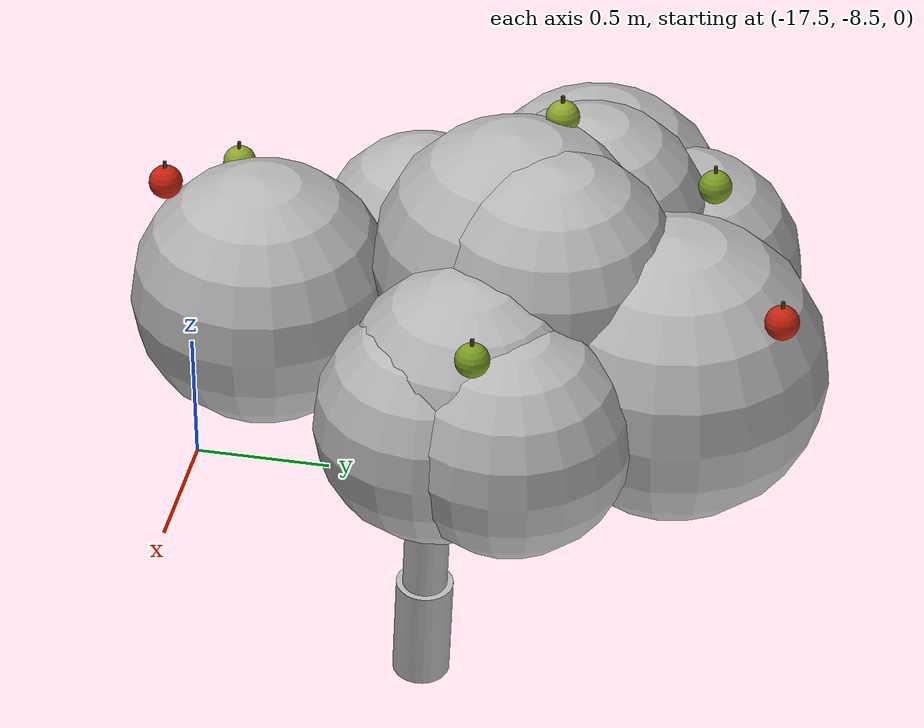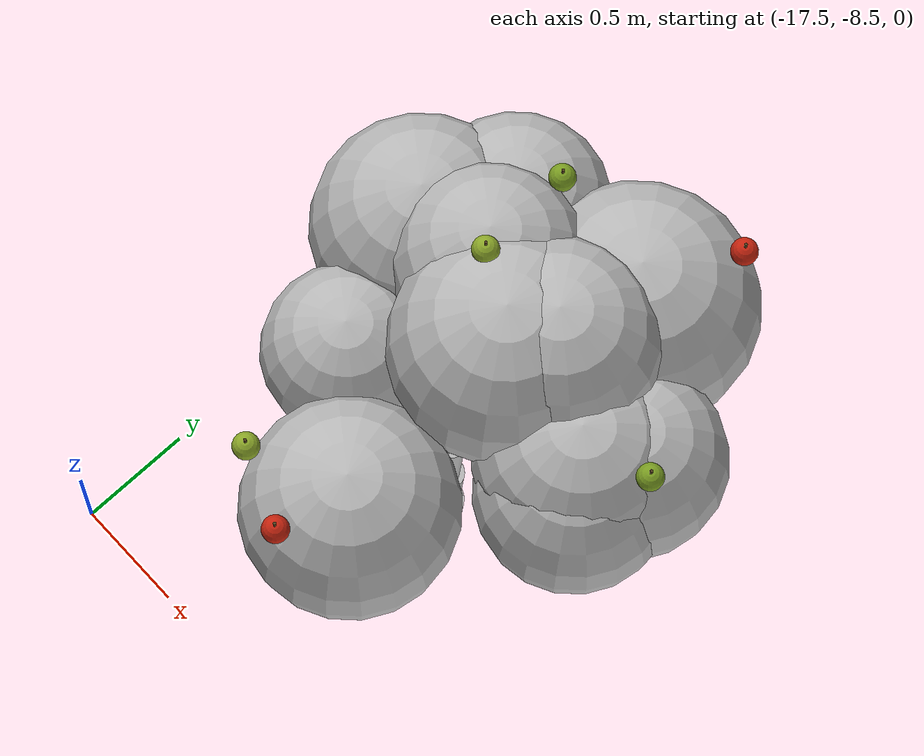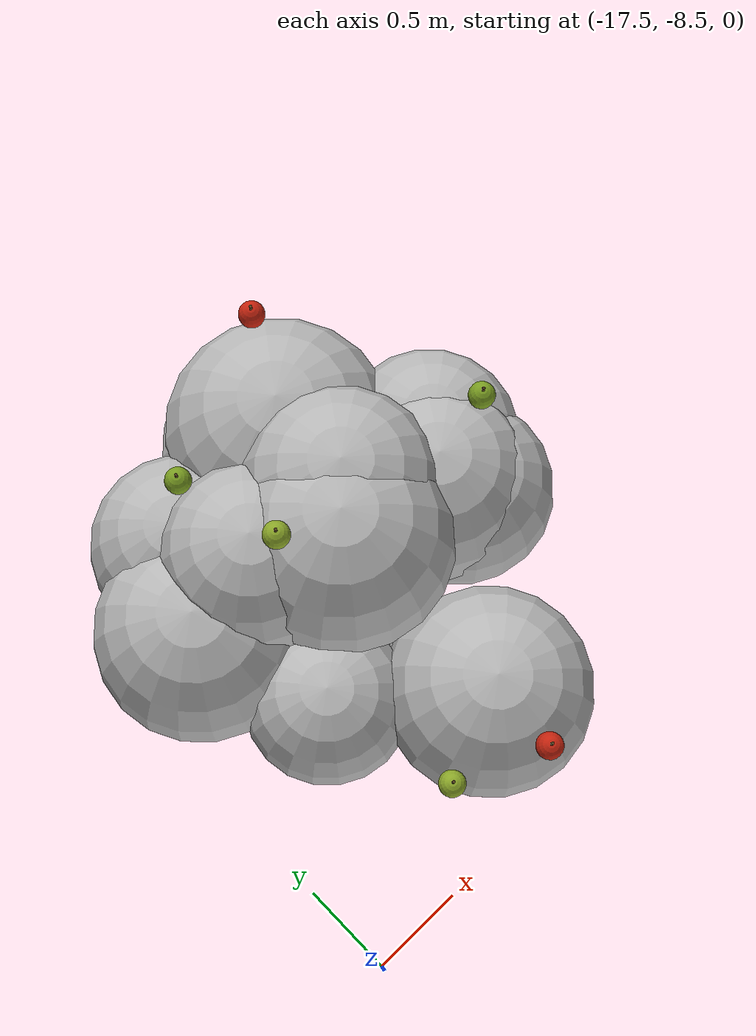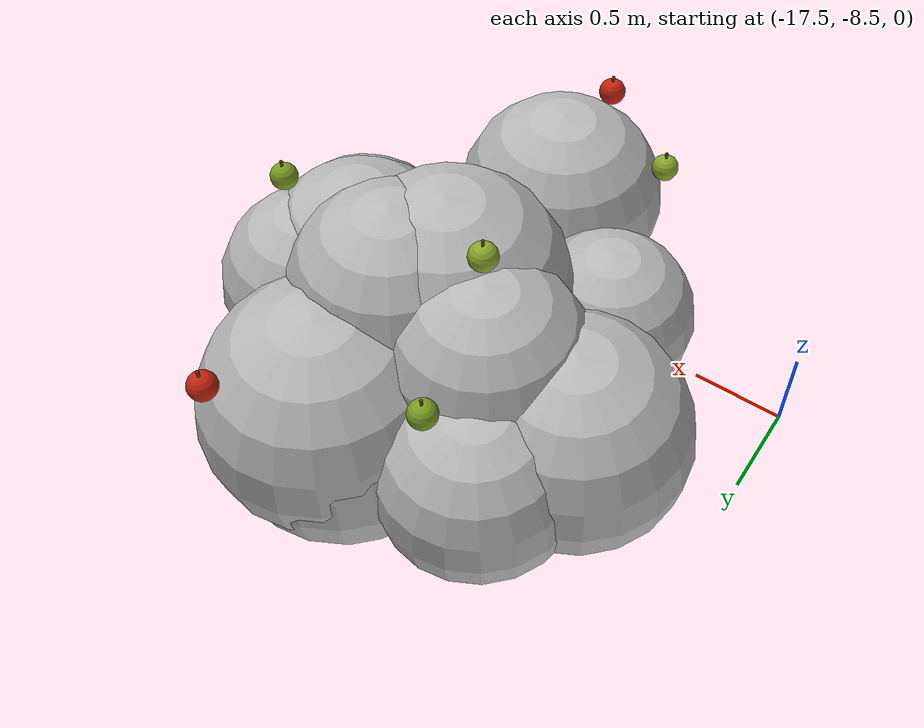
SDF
<sdf version="1.6">
 <world name="default">
  <model name="tree_r0_t0">
   <static>true</static>
   <link name="tree_r0_t0_trunk0">
    <pose>-16.4653 -7.4328 0.1814 -0.0507 0.0288 0</pose>
    <collision name="tree_r0_t0_trunk0_c">
     <geometry><cylinder><radius>0.0986</radius><length>0.3846</length></cylinder></geometry>
    </collision>
    <visual name="tree_r0_t0_trunk0_v">
     <geometry><cylinder><radius>0.0986</radius><length>0.3846</length></cylinder></geometry>
     <material>
      <script>
       <uri>model://orchard/materials/scripts</uri>
       <uri>model://orchard/materials/textures</uri>
       <name>Orchard/Bark</name>
      </script>
     </material>
    </visual>
   </link>
   <link name="tree_r0_t0_trunk1">
    <pose>-16.4548 -7.4144 0.5443 -0.0507 0.0288 0</pose>
    <visual name="tree_r0_t0_trunk1_v">
     <geometry><cylinder><radius>0.0769</radius><length>0.3846</length></cylinder></geometry>
     <material>
      <script>
       <uri>model://orchard/materials/scripts</uri>
       <uri>model://orchard/materials/textures</uri>
       <name>Orchard/Bark</name>
      </script>
     </material>
    </visual>
   </link>
   <link name="tree_r0_t0_trunk2">
    <pose>-16.4444 -7.3960 0.9071 -0.0507 0.0288 0</pose>
    <visual name="tree_r0_t0_trunk2_v">
     <geometry><cylinder><radius>0.0552</radius><length>0.3846</length></cylinder></geometry>
     <material>
      <script>
       <uri>model://orchard/materials/scripts</uri>
       <uri>model://orchard/materials/textures</uri>
       <name>Orchard/Bark</name>
      </script>
     </material>
    </visual>
   </link>
   <link name="tree_r0_t0_br0">
    <pose>-16.2346 -7.3371 1.3193 0.0000 0.7395 0.2382</pose>
    <visual name="tree_r0_t0_br0_v">
     <geometry><cylinder><radius>0.0227</radius><length>0.6247</length></cylinder></geometry>
     <material>
      <script>
       <uri>model://orchard/materials/scripts</uri>
       <uri>model://orchard/materials/textures</uri>
       <name>Orchard/Bark</name>
      </script>
     </material>
    </visual>
   </link>
   <link name="tree_r0_t0_br1">
    <pose>-16.2652 -7.1058 1.3231 0.0000 0.9537 1.0164</pose>
    <visual name="tree_r0_t0_br1_v">
     <geometry><cylinder><radius>0.0273</radius><length>0.8105</length></cylinder></geometry>
     <material>
      <script>
       <uri>model://orchard/materials/scripts</uri>
       <uri>model://orchard/materials/textures</uri>
       <name>Orchard/Bark</name>
      </script>
     </material>
    </visual>
   </link>
   <link name="tree_r0_t0_br2">
    <pose>-16.6410 -7.1288 1.2903 0.0000 1.0187 2.2347</pose>
    <visual name="tree_r0_t0_br2_v">
     <geometry><cylinder><radius>0.0277</radius><length>0.7694</length></cylinder></geometry>
     <material>
      <script>
       <uri>model://orchard/materials/scripts</uri>
       <uri>model://orchard/materials/textures</uri>
       <name>Orchard/Bark</name>
      </script>
     </material>
    </visual>
   </link>
   <link name="tree_r0_t0_br3">
    <pose>-16.6344 -7.4707 1.3455 0.0000 0.6910 3.5474</pose>
    <visual name="tree_r0_t0_br3_v">
     <geometry><cylinder><radius>0.0327</radius><length>0.6668</length></cylinder></geometry>
     <material>
      <script>
       <uri>model://orchard/materials/scripts</uri>
       <uri>model://orchard/materials/textures</uri>
       <name>Orchard/Bark</name>
      </script>
     </material>
    </visual>
   </link>
   <link name="tree_r0_t0_br4">
    <pose>-16.4355 -7.6374 1.3209 0.0000 0.8233 4.7269</pose>
    <visual name="tree_r0_t0_br4_v">
     <geometry><cylinder><radius>0.0239</radius><length>0.6835</length></cylinder></geometry>
     <material>
      <script>
       <uri>model://orchard/materials/scripts</uri>
       <uri>model://orchard/materials/textures</uri>
       <name>Orchard/Bark</name>
      </script>
     </material>
    </visual>
   </link>
   <link name="tree_r0_t0_fol0">
    <pose>-15.8335 -7.0119 1.5308 0 0 0</pose>
    <visual name="tree_r0_t0_fol0_v">
     <geometry><sphere><radius>0.3902</radius></sphere></geometry>
     <material>
      <script>
       <uri>model://orchard/materials/scripts</uri>
       <uri>model://orchard/materials/textures</uri>
       <name>Orchard/Foliage1</name>
      </script>
     </material>
    </visual>
   </link>
   <link name="tree_r0_t0_fol1">
    <pose>-16.2694 -6.5624 1.5442 0 0 0</pose>
    <visual name="tree_r0_t0_fol1_v">
     <geometry><sphere><radius>0.4944</radius></sphere></geometry>
     <material>
      <script>
       <uri>model://orchard/materials/scripts</uri>
       <uri>model://orchard/materials/textures</uri>
       <name>Orchard/Foliage3</name>
      </script>
     </material>
    </visual>
   </link>
   <link name="tree_r0_t0_fol2">
    <pose>-16.8904 -6.6268 1.5082 0 0 0</pose>
    <visual name="tree_r0_t0_fol2_v">
     <geometry><sphere><radius>0.3931</radius></sphere></geometry>
     <material>
      <script>
       <uri>model://orchard/materials/scripts</uri>
       <uri>model://orchard/materials/textures</uri>
       <name>Orchard/Foliage0</name>
      </script>
     </material>
    </visual>
   </link>
   <link name="tree_r0_t0_fol3">
    <pose>-17.0858 -6.9519 1.5268 0 0 0</pose>
    <visual name="tree_r0_t0_fol3_v">
     <geometry><sphere><radius>0.4514</radius></sphere></geometry>
     <material>
      <script>
       <uri>model://orchard/materials/scripts</uri>
       <uri>model://orchard/materials/textures</uri>
       <name>Orchard/Foliage1</name>
      </script>
     </material>
    </visual>
   </link>
   <link name="tree_r0_t0_fol4">
    <pose>-16.3393 -6.5587 1.4676 0 0 0</pose>
    <visual name="tree_r0_t0_fol4_v">
     <geometry><sphere><radius>0.4600</radius></sphere></geometry>
     <material>
      <script>
       <uri>model://orchard/materials/scripts</uri>
       <uri>model://orchard/materials/textures</uri>
       <name>Orchard/Foliage3</name>
      </script>
     </material>
    </visual>
   </link>
   <link name="tree_r0_t0_fol5">
    <pose>-16.9046 -7.5106 1.5064 0 0 0</pose>
    <visual name="tree_r0_t0_fol5_v">
     <geometry><sphere><radius>0.3475</radius></sphere></geometry>
     <material>
      <script>
       <uri>model://orchard/materials/scripts</uri>
       <uri>model://orchard/materials/textures</uri>
       <name>Orchard/Foliage1</name>
      </script>
     </material>
    </visual>
   </link>
   <link name="tree_r0_t0_fol6">
    <pose>-16.3045 -6.9669 1.8181 0 0 0</pose>
    <visual name="tree_r0_t0_fol6_v">
     <geometry><sphere><radius>0.4140</radius></sphere></geometry>
     <material>
      <script>
       <uri>model://orchard/materials/scripts</uri>
       <uri>model://orchard/materials/textures</uri>
       <name>Orchard/Foliage2</name>
      </script>
     </material>
    </visual>
   </link>
   <link name="tree_r0_t0_fol7">
    <pose>-16.4407 -7.1085 1.7764 0 0 0</pose>
    <visual name="tree_r0_t0_fol7_v">
     <geometry><sphere><radius>0.4650</radius></sphere></geometry>
     <material>
      <script>
       <uri>model://orchard/materials/scripts</uri>
       <uri>model://orchard/materials/textures</uri>
       <name>Orchard/Foliage2</name>
      </script>
     </material>
    </visual>
   </link>
   <link name="tree_r0_t0_fol8">
    <pose>-15.8855 -7.2571 1.5172 0 0 0</pose>
    <visual name="tree_r0_t0_fol8_v">
     <geometry><sphere><radius>0.3945</radius></sphere></geometry>
     <material>
      <script>
       <uri>model://orchard/materials/scripts</uri>
       <uri>model://orchard/materials/textures</uri>
       <name>Orchard/Foliage2</name>
      </script>
     </material>
    </visual>
   </link>
   <link name="tree_r0_t0_fol9">
    <pose>-16.7368 -6.9176 1.7532 0 0 0</pose>
    <visual name="tree_r0_t0_fol9_v">
     <geometry><sphere><radius>0.3900</radius></sphere></geometry>
     <material>
      <script>
       <uri>model://orchard/materials/scripts</uri>
       <uri>model://orchard/materials/textures</uri>
       <name>Orchard/Foliage2</name>
      </script>
     </material>
    </visual>
   </link>
   <link name="tree_r0_t0_fol10">
    <pose>-15.9590 -7.1636 1.5862 0 0 0</pose>
    <visual name="tree_r0_t0_fol10_v">
     <geometry><sphere><radius>0.4174</radius></sphere></geometry>
     <material>
      <script>
       <uri>model://orchard/materials/scripts</uri>
       <uri>model://orchard/materials/textures</uri>
       <name>Orchard/Foliage0</name>
      </script>
     </material>
    </visual>
   </link>
   <link name="tree_r0_t0_fol11">
    <pose>-16.4131 -7.9407 1.5576 0 0 0</pose>
    <visual name="tree_r0_t0_fol11_v">
     <geometry><sphere><radius>0.4350</radius></sphere></geometry>
     <material>
      <script>
       <uri>model://orchard/materials/scripts</uri>
       <uri>model://orchard/materials/textures</uri>
       <name>Orchard/Foliage2</name>
      </script>
     </material>
    </visual>
   </link>
   <link name="tree_r0_t0_ap0">
    <pose>-15.6552 -7.1002 1.9350 0 0 0</pose>
    <visual name="tree_r0_t0_ap0_v">
     <geometry><sphere><radius>0.0550</radius></sphere></geometry>
     <material>
      <ambient>0.192 0.248 0.052 1.00</ambient>
      <diffuse>0.480 0.620 0.130 1.00</diffuse>
      <specular>0.45 0.35 0.32 1</specular>
     </material>
    </visual>
   </link>
   <link name="tree_r0_t0_st0">
    <pose>-15.6552 -7.1002 1.9872 0 0 0</pose>
    <visual name="tree_r0_t0_st0_v">
     <geometry><cylinder><radius>0.0060</radius><length>0.0500</length></cylinder></geometry>
     <material><ambient>0.128 0.096 0.040 1.00</ambient><diffuse>0.320 0.240 0.100 1.00</diffuse></material>
    </visual>
   </link>
   <link name="tree_r0_t0_ap1">
    <pose>-16.8080 -8.1088 1.7825 0 0 0</pose>
    <visual name="tree_r0_t0_ap1_v">
     <geometry><sphere><radius>0.0550</radius></sphere></geometry>
     <material>
      <ambient>0.220 0.264 0.064 1.00</ambient>
      <diffuse>0.550 0.660 0.160 1.00</diffuse>
      <specular>0.45 0.35 0.32 1</specular>
     </material>
    </visual>
   </link>
   <link name="tree_r0_t0_st1">
    <pose>-16.8080 -8.1088 1.8348 0 0 0</pose>
    <visual name="tree_r0_t0_st1_v">
     <geometry><cylinder><radius>0.0060</radius><length>0.0500</length></cylinder></geometry>
     <material><ambient>0.128 0.096 0.040 1.00</ambient><diffuse>0.320 0.240 0.100 1.00</diffuse></material>
    </visual>
   </link>
   <link name="tree_r0_t0_ap2">
    <pose>-16.0703 -6.2064 1.9041 0 0 0</pose>
    <visual name="tree_r0_t0_ap2_v">
     <geometry><sphere><radius>0.0550</radius></sphere></geometry>
     <material>
      <ambient>0.312 0.056 0.024 1.00</ambient>
      <diffuse>0.780 0.140 0.060 1.00</diffuse>
      <specular>0.45 0.35 0.32 1</specular>
     </material>
    </visual>
   </link>
   <link name="tree_r0_t0_st2">
    <pose>-16.0703 -6.2064 1.9563 0 0 0</pose>
    <visual name="tree_r0_t0_st2_v">
     <geometry><cylinder><radius>0.0060</radius><length>0.0500</length></cylinder></geometry>
     <material><ambient>0.128 0.096 0.040 1.00</ambient><diffuse>0.320 0.240 0.100 1.00</diffuse></material>
    </visual>
   </link>
   <link name="tree_r0_t0_ap3">
    <pose>-16.6729 -7.0029 2.1796 0 0 0</pose>
    <visual name="tree_r0_t0_ap3_v">
     <geometry><sphere><radius>0.0550</radius></sphere></geometry>
     <material>
      <ambient>0.220 0.264 0.064 1.00</ambient>
      <diffuse>0.550 0.660 0.160 1.00</diffuse>
      <specular>0.45 0.35 0.32 1</specular>
     </material>
    </visual>
   </link>
   <link name="tree_r0_t0_st3">
    <pose>-16.6729 -7.0029 2.2319 0 0 0</pose>
    <visual name="tree_r0_t0_st3_v">
     <geometry><cylinder><radius>0.0060</radius><length>0.0500</length></cylinder></geometry>
     <material><ambient>0.128 0.096 0.040 1.00</ambient><diffuse>0.320 0.240 0.100 1.00</diffuse></material>
    </visual>
   </link>
   <link name="tree_r0_t0_ap4">
    <pose>-16.4552 -8.2653 1.9148 0 0 0</pose>
    <visual name="tree_r0_t0_ap4_v">
     <geometry><sphere><radius>0.0550</radius></sphere></geometry>
     <material>
      <ambient>0.312 0.056 0.024 1.00</ambient>
      <diffuse>0.780 0.140 0.060 1.00</diffuse>
      <specular>0.45 0.35 0.32 1</specular>
     </material>
    </visual>
   </link>
   <link name="tree_r0_t0_st4">
    <pose>-16.4552 -8.2653 1.9671 0 0 0</pose>
    <visual name="tree_r0_t0_st4_v">
     <geometry><cylinder><radius>0.0060</radius><length>0.0500</length></cylinder></geometry>
     <material><ambient>0.128 0.096 0.040 1.00</ambient><diffuse>0.320 0.240 0.100 1.00</diffuse></material>
    </visual>
   </link>
   <link name="tree_r0_t0_ap5">
    <pose>-16.7598 -6.5152 1.9160 0 0 0</pose>
    <visual name="tree_r0_t0_ap5_v">
     <geometry><sphere><radius>0.0550</radius></sphere></geometry>
     <material>
      <ambient>0.192 0.248 0.052 1.00</ambient>
      <diffuse>0.480 0.620 0.130 1.00</diffuse>
      <specular>0.45 0.35 0.32 1</specular>
     </material>
    </visual>
   </link>
   <link name="tree_r0_t0_st5">
    <pose>-16.7598 -6.5152 1.9683 0 0 0</pose>
    <visual name="tree_r0_t0_st5_v">
     <geometry><cylinder><radius>0.0060</radius><length>0.0500</length></cylinder></geometry>
     <material><ambient>0.128 0.096 0.040 1.00</ambient><diffuse>0.320 0.240 0.100 1.00</diffuse></material>
    </visual>
   </link>
  </model>
 </world>
</sdf>
